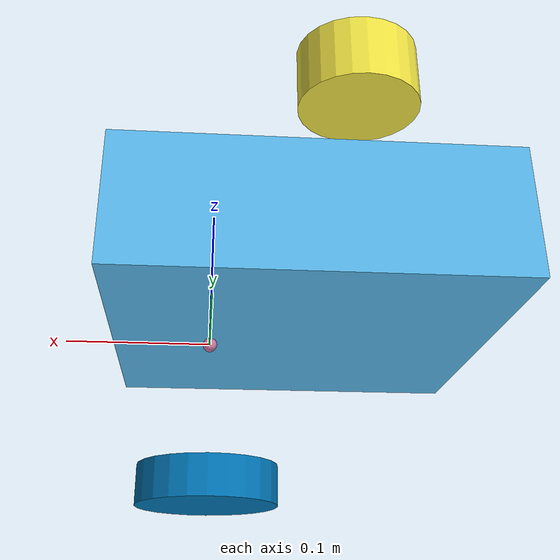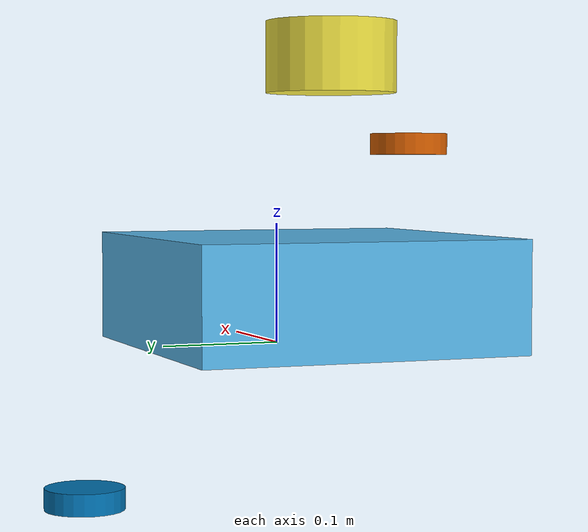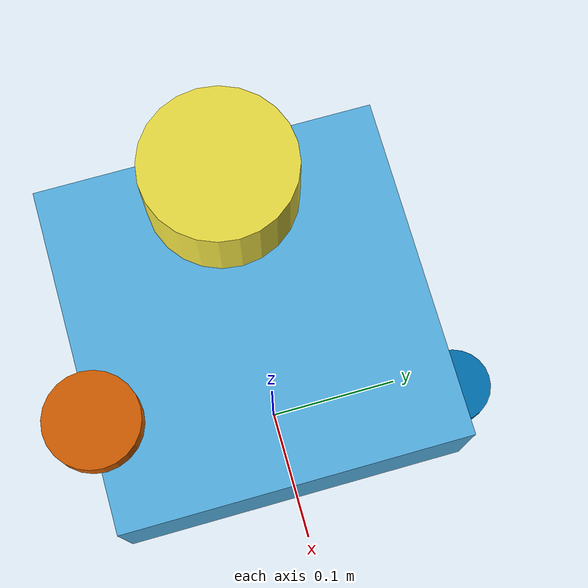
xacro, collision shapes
<?xml version="1.0"?>
<robot xmlns:xacro="http://ros.org/wiki/xacro" name="turtlebot3_waffle">
    <xacro:arg name="namespace" default="robot"/>

    <!-- Base Footprint -->
    <link name="base_footprint"/>

    <!-- Base Link -->
    <link name="base_link">
        <inertial>
            <origin xyz="-0.064 0 0.048" rpy="0 0 0"/>
            <mass value="1.3729096"/>
            <inertia ixx="0.042111447" ixy="0" ixz="0" iyy="0.042111447" iyz="0" izz="0.075254874"/>
        </inertial>
        <collision name="base_collision">
            <origin xyz="-0.064 0 0.048" rpy="0 0 0"/>
            <geometry>
                <box size="0.265 0.265 0.089"/>
            </geometry>
        </collision>
        <visual name="base_visual">
            <origin xyz="-0.064 0 0" rpy="0 0 0"/>
            <geometry>
                <mesh filename="model://turtlebot3_common/meshes/waffle_base.dae" scale="0.001 0.001 0.001"/>
            </geometry>
        </visual>
    </link>

    <!-- Other links will follow here... -->

    <!-- Joint: base_joint -->
    <joint name="base_joint" type="fixed">
        <parent link="base_footprint"/>
        <child link="base_link"/>
    </joint>

    <!-- Plugins -->
    <gazebo>
        <plugin name="turtlebot3_diff_drive" filename="libgazebo_ros_diff_drive.so">
            <ros>
                <namespace>$(arg namespace)</namespace>
                <remapping>/tf:=tf</remapping>
            </ros>
            <update_rate>30</update_rate>
            <left_joint>wheel_left_joint</left_joint>
            <right_joint>wheel_right_joint</right_joint>
            <wheel_separation>0.287</wheel_separation>
            <wheel_diameter>0.066</wheel_diameter>
            <max_wheel_torque>20</max_wheel_torque>
            <max_wheel_acceleration>1.0</max_wheel_acceleration>
            <command_topic>cmd_vel</command_topic>
            <publish_odom>true</publish_odom>
            <publish_odom_tf>true</publish_odom_tf>
            <publish_wheel_tf>false</publish_wheel_tf>
            <odometry_topic>odom</odometry_topic>
            <odometry_frame>odom</odometry_frame>
            <robot_base_frame>base_footprint</robot_base_frame>
        </plugin>

        <plugin name="turtlebot3_joint_state" filename="libgazebo_ros_joint_state_publisher.so">
            <ros>
                <namespace>$(arg namespace)</namespace>
                <remapping>~/out:=joint_states</remapping>
            </ros>
            <update_rate>30</update_rate>
            <joint_name>wheel_left_joint</joint_name>
            <joint_name>wheel_right_joint</joint_name>
        </plugin>
    </gazebo>

<!-- IMU Link -->
<link name="imu_link">
    <sensor name="tb3_imu" type="imu">
        <always_on>true</always_on>
        <update_rate>200</update_rate>
        <imu>
            <angular_velocity>
                <x>
                    <noise type="gaussian">
                        <mean>0.0</mean>
                        <stddev>2e-4</stddev>
                    </noise>
                </x>
                <y>
                    <noise type="gaussian">
                        <mean>0.0</mean>
                        <stddev>2e-4</stddev>
                    </noise>
                </y>
                <z>
                    <noise type="gaussian">
                        <mean>0.0</mean>
                        <stddev>2e-4</stddev>
                    </noise>
                </z>
            </angular_velocity>
            <linear_acceleration>
                <x>
                    <noise type="gaussian">
                        <mean>0.0</mean>
                        <stddev>1.7e-2</stddev>
                    </noise>
                </x>
                <y>
                    <noise type="gaussian">
                        <mean>0.0</mean>
                        <stddev>1.7e-2</stddev>
                    </noise>
                </y>
                <z>
                    <noise type="gaussian">
                        <mean>0.0</mean>
                        <stddev>1.7e-2</stddev>
                    </noise>
                </z>
            </linear_acceleration>
        </imu>
        <plugin name="turtlebot3_imu" filename="libgazebo_ros_imu_sensor.so">
            <ros>
                <namespace>$(arg namespace)</namespace>
                <remapping>~/out:=imu</remapping>
            </ros>
        </plugin>
    </sensor>
</link>

<!-- Base Scan -->
<link name="base_scan">
    <inertial>
        <origin xyz="-0.052 0 0.111" rpy="0 0 0"/>
        <mass value="0.114"/>
        <inertia ixx="0.001" ixy="0" ixz="0" iyy="0.001" iyz="0" izz="0.001"/>
    </inertial>
    <collision name="lidar_sensor_collision">
        <origin xyz="-0.052 0 0.111" rpy="0 0 0"/>
        <geometry>
            <cylinder radius="0.0508" length="0.055"/>
        </geometry>
    </collision>
    <visual name="lidar_sensor_visual">
        <origin xyz="-0.064 0 0.121" rpy="0 0 0"/>
        <geometry>
            <mesh filename="model://turtlebot3_common/meshes/lds.dae" scale="0.001 0.001 0.001"/>
        </geometry>
    </visual>
    <sensor name="hls_lfcd_lds" type="ray">
        <always_on>true</always_on>
        <visualize>false</visualize>
        <origin xyz="-0.064 0 0.121" rpy="0 0 0"/>
        <update_rate>5</update_rate>
        <ray>
            <scan>
                <horizontal>
                    <samples>360</samples>
                    <resolution>1.0</resolution>
                    <min_angle>0.0</min_angle>
                    <max_angle>6.28</max_angle>
                </horizontal>
            </scan>
            <range>
                <min>0.12</min>
                <max>3.5</max>
                <resolution>0.015</resolution>
            </range>
            <noise type="gaussian">
                <mean>0.0</mean>
                <stddev>0.01</stddev>
            </noise>
        </ray>
        <plugin name="turtlebot3_laserscan" filename="libgazebo_ros_ray_sensor.so">
            <ros>
                <namespace>$(arg namespace)</namespace>
                <remapping>~/out:=scan</remapping>
            </ros>
            <output_type>sensor_msgs/LaserScan</output_type>
            <frame_name>base_scan</frame_name>
        </plugin>
    </sensor>
</link>
<!-- Left Wheel -->
<link name="wheel_left_link">
    <inertial>
        <origin xyz="0.0 0.144 0.023" rpy="-1.57 0 0"/>
        <mass value="0.1"/>
        <inertia ixx="1.1175580e-05" ixy="-4.2369783e-11" ixz="-5.9381719e-09" iyy="1.1192413e-05" iyz="-1.4400107e-11" izz="2.0712558e-05"/>
    </inertial>
    <collision name="wheel_left_collision">
        <origin xyz="0.0 0.144 0.023" rpy="-1.57 0 0"/>
        <geometry>
            <cylinder radius="0.033" length="0.018"/>
        </geometry>
    </collision>
    <visual name="wheel_left_visual">
        <origin xyz="0.0 0.144 0.023" rpy="0 0 0"/>
        <geometry>
            <mesh filename="model://turtlebot3_common/meshes/tire.dae" scale="0.001 0.001 0.001"/>
        </geometry>
    </visual>
</link>

<!-- Right Wheel -->
<link name="wheel_right_link">
    <inertial>
        <origin xyz="0.0 -0.144 0.023" rpy="-1.57 0 0"/>
        <mass value="0.1"/>
        <inertia ixx="1.1175580e-05" ixy="-4.2369783e-11" ixz="-5.9381719e-09" iyy="1.1192413e-05" iyz="-1.4400107e-11" izz="2.0712558e-05"/>
    </inertial>
    <collision name="wheel_right_collision">
        <origin xyz="0.0 -0.144 0.023" rpy="-1.57 0 0"/>
        <geometry>
            <cylinder radius="0.033" length="0.018"/>
        </geometry>
    </collision>
    <visual name="wheel_right_visual">
        <origin xyz="0.0 -0.144 0.023" rpy="0 0 0"/>
        <geometry>
            <mesh filename="model://turtlebot3_common/meshes/tire.dae" scale="0.001 0.001 0.001"/>
        </geometry>
    </visual>
</link>

<!-- Caster Back Right -->
<link name="caster_back_right_link">
    <origin xyz="-0.177 -0.064 -0.004" rpy="-1.57 0 0"/>
    <inertial>
        <mass value="0.001"/>
        <inertia ixx="0.00001" ixy="0" ixz="0" iyy="0.00001" iyz="0" izz="0.00001"/>
    </inertial>
    <collision name="caster_right_collision">
        <geometry>
            <sphere radius="0.005"/>
        </geometry>
    </collision>
</link>

<!-- Caster Back Left -->
<link name="caster_back_left_link">
    <origin xyz="-0.177 0.064 -0.004" rpy="-1.57 0 0"/>
    <inertial>
        <mass value="0.001"/>
        <inertia ixx="0.00001" ixy="0" ixz="0" iyy="0.00001" iyz="0" izz="0.00001"/>
    </inertial>
    <collision name="caster_left_collision">
        <geometry>
            <sphere radius="0.005"/>
        </geometry>
    </collision>
</link>

<!-- Camera Link -->
<link name="camera_link"/>

<!-- Camera RGB Frame -->
<link name="camera_rgb_frame">
    <inertial>
        <origin xyz="0.069 -0.047 0.107" rpy="0 0 0"/>
        <mass value="0.035"/>
        <inertia ixx="0.001" ixy="0" ixz="0" iyy="0.001" iyz="0" izz="0.001"/>
    </inertial>
    <origin xyz="0.069 -0.047 0.107" rpy="0 0 0"/>
    <sensor name="camera" type="depth">
        <origin xyz="0 0 0" rpy="0 0 0"/>
        <always_on>true</always_on>
        <visualize>true</visualize>
        <update_rate>1</update_rate>
        <camera name="intel_realsense_r200">
            <horizontal_fov>1.02974</horizontal_fov>
            <image>
                <width>640</width>
                <height>480</height>
                <format>B8G8R8</format>
            </image>
            <clip>
                <near>0.05</near>
                <far>8.0</far>
            </clip>
            <noise type="gaussian">
                <mean>0.0</mean>
                <stddev>0.007</stddev>
            </noise>
        </camera>
        <plugin name="camera_driver" filename="libgazebo_ros_camera.so">
            <ros>
                <namespace>$(arg namespace)</namespace>
            </ros>
            <frame_name>camera_rgb_frame</frame_name>
            <min_depth>0.1</min_depth>
            <max_depth>100</max_depth>
        </plugin>
    </sensor>
</link>

<!-- All remaining joints -->
<joint name="wheel_left_joint" type="revolute">
    <parent link="base_link"/>
    <child link="wheel_left_link"/>
    <origin xyz="0.0 0.144 0.023" rpy="-1.57 0 0"/>
    <axis xyz="0 0 1"/>
</joint>

<joint name="wheel_right_joint" type="revolute">
    <parent link="base_link"/>
    <child link="wheel_right_link"/>
    <origin xyz="0.0 -0.144 0.023" rpy="-1.57 0 0"/>
    <axis xyz="0 0 1"/>
</joint>

<joint name="caster_back_right_joint" type="ball">
    <parent link="base_link"/>
    <child link="caster_back_right_link"/>
</joint>

<joint name="caster_back_left_joint" type="ball">
    <parent link="base_link"/>
    <child link="caster_back_left_link"/>
</joint>

<joint name="imu_joint" type="fixed">
    <parent link="base_link"/>
    <child link="imu_link"/>
    <origin xyz="-0.032 0 0.068" rpy="0 0 0"/>
    <axis xyz="0 0 1"/>
</joint>

<joint name="lidar_joint" type="fixed">
    <parent link="base_link"/>
    <child link="base_scan"/>
    <origin xyz="-0.064 0 0.121" rpy="0 0 0"/>
    <axis xyz="0 0 1"/>
</joint>

<joint name="camera_joint" type="fixed">
    <parent link="base_link"/>
    <child link="camera_link"/>
    <origin xyz="0.064 -0.065 0.094" rpy="0 0 0"/>
    <axis xyz="0 0 1"/>
</joint>

<joint name="camera_rgb_joint" type="fixed">
    <parent link="camera_link"/>
    <child link="camera_rgb_frame"/>
    <origin xyz="0.005 0.018 0.013" rpy="1 0 0"/>
    <axis xyz="0 0 1"/>
</joint>

</robot>
